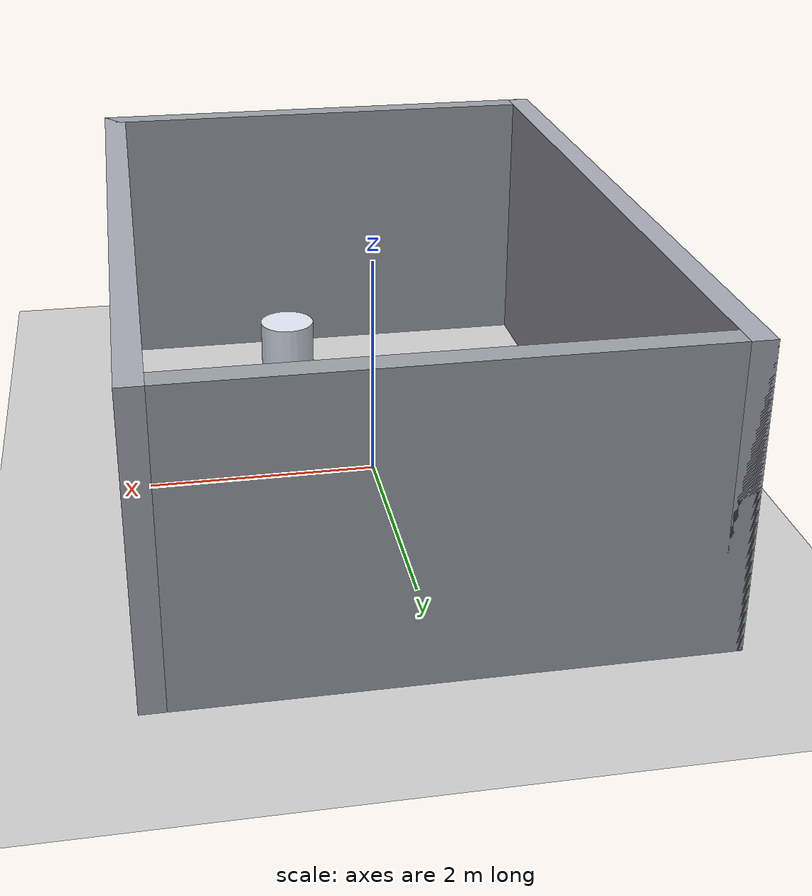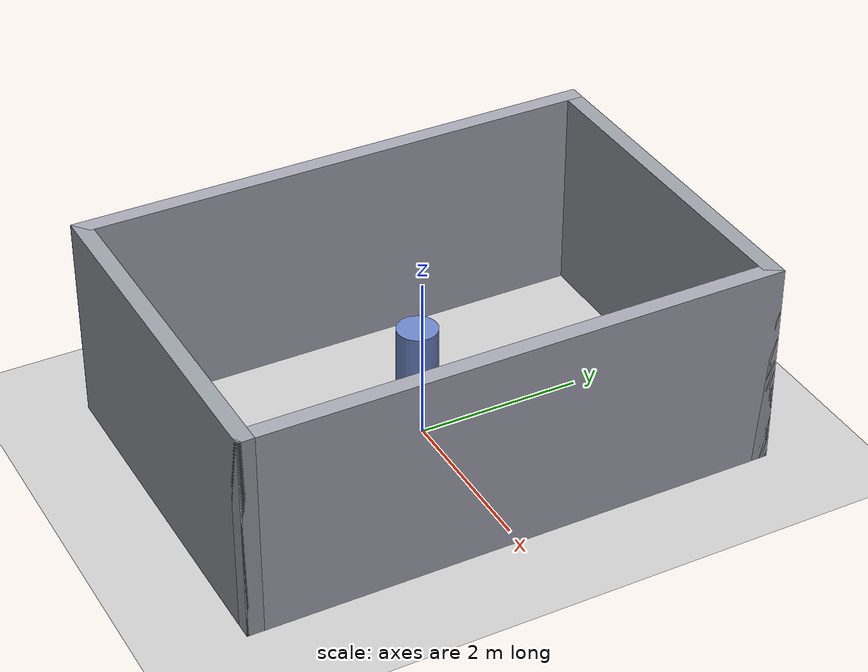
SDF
<?xml version="1.0" ?>
<sdf version="1.6">
  <world name="warehouse_semantic">

    <plugin filename="gz-sim-physics-system"
            name="gz::sim::systems::Physics"/>
    <plugin filename="gz-sim-user-commands-system"
            name="gz::sim::systems::UserCommands"/>
    <plugin filename="gz-sim-scene-broadcaster-system"
            name="gz::sim::systems::SceneBroadcaster"/>
    <plugin filename="gz-sim-sensors-system"
            name="gz::sim::systems::Sensors">
      <render_engine>ogre2</render_engine>
    </plugin>
    <plugin filename="gz-sim-imu-system"
            name="gz::sim::systems::Imu"/>

    <!-- Standard lighting -->
    <light name="sun" type="directional">
      <cast_shadows>false</cast_shadows>
      <pose>0 0 10 0 0 0</pose>
      <diffuse>0.8 0.8 0.8 1</diffuse>
      <specular>0.2 0.2 0.2 1</specular>
      <attenuation>
        <range>1000</range>
        <constant>0.9</constant>
        <linear>0.01</linear>
        <quadratic>0.001</quadratic>
      </attenuation>
      <direction>-0.5 0.1 -0.9</direction>
    </light>

    <!-- Infinite ground (collision + visual); warehouse walls provide boundaries -->
    <model name="ground_plane">
      <static>true</static>
      <link name="link">
        <collision name="collision">
          <geometry>
            <plane>
              <normal>0 0 1</normal>
              <size>100 100</size>
            </plane>
          </geometry>
        </collision>
        <visual name="visual">
          <geometry>
            <plane>
              <normal>0 0 1</normal>
              <size>100 100</size>
            </plane>
          </geometry>
          <material>
            <ambient>0.8 0.8 0.8 1</ambient>
            <diffuse>0.8 0.8 0.8 1</diffuse>
            <specular>0.8 0.8 0.8 1</specular>
          </material>
        </visual>
      </link>
    </model>

    <physics name="default_physics" type="dart">
      <max_step_size>0.001</max_step_size>
      <real_time_factor>1.0</real_time_factor>
    </physics>

    <!-- Scene ambient (subtle, works with sun) -->
    <scene>
      <ambient>0.4 0.4 0.4 1</ambient>
      <background>0.7 0.75 0.8 1</background>
    </scene>

    <!--
      Walls: static boxes, thickness 0.2 m, height 2.5 m (good for lidar / collision).
      Inner clearance: X in [-2, 2], Y in [-3, 3] (4 m × 6 m).
    -->
    <model name="wall_east">
      <static>true</static>
      <pose>2.1 0 1.25 0 0 0</pose>
      <link name="link">
        <collision name="collision">
          <geometry>
            <box>
              <size>0.2 6.4 2.5</size>
            </box>
          </geometry>
        </collision>
        <visual name="visual">
          <geometry>
            <box>
              <size>0.2 6.4 2.5</size>
            </box>
          </geometry>
          <material>
            <ambient>0.55 0.55 0.58 1</ambient>
            <diffuse>0.65 0.65 0.7 1</diffuse>
          </material>
        </visual>
      </link>
    </model>

    <model name="wall_west">
      <static>true</static>
      <pose>-2.1 0 1.25 0 0 0</pose>
      <link name="link">
        <collision name="collision">
          <geometry>
            <box>
              <size>0.2 6.4 2.5</size>
            </box>
          </geometry>
        </collision>
        <visual name="visual">
          <geometry>
            <box>
              <size>0.2 6.4 2.5</size>
            </box>
          </geometry>
          <material>
            <ambient>0.55 0.55 0.58 1</ambient>
            <diffuse>0.65 0.65 0.7 1</diffuse>
          </material>
        </visual>
      </link>
    </model>

    <model name="wall_north">
      <static>true</static>
      <pose>0 3.1 1.25 0 0 0</pose>
      <link name="link">
        <collision name="collision">
          <geometry>
            <box>
              <size>4.4 0.2 2.5</size>
            </box>
          </geometry>
        </collision>
        <visual name="visual">
          <geometry>
            <box>
              <size>4.4 0.2 2.5</size>
            </box>
          </geometry>
          <material>
            <ambient>0.5 0.52 0.55 1</ambient>
            <diffuse>0.6 0.62 0.65 1</diffuse>
          </material>
        </visual>
      </link>
    </model>

    <model name="wall_south">
      <static>true</static>
      <pose>0 -3.1 1.25 0 0 0</pose>
      <link name="link">
        <collision name="collision">
          <geometry>
            <box>
              <size>4.4 0.2 2.5</size>
            </box>
          </geometry>
        </collision>
        <visual name="visual">
          <geometry>
            <box>
              <size>4.4 0.2 2.5</size>
            </box>
          </geometry>
          <material>
            <ambient>0.5 0.52 0.55 1</ambient>
            <diffuse>0.6 0.62 0.65 1</diffuse>
          </material>
        </visual>
      </link>
    </model>

    <!-- Semantic props: cylinders at YAML approach poses (r=0.25 m) for LiDAR returns. z=center height. -->
    <model name="table">
      <static>true</static>
      <pose>0.7 1.5 0.45 0 0 0</pose>
      <link name="link">
        <collision name="collision">
          <geometry>
            <cylinder>
              <radius>0.25</radius>
              <length>0.9</length>
            </cylinder>
          </geometry>
        </collision>
        <visual name="visual">
          <geometry>
            <cylinder>
              <radius>0.25</radius>
              <length>0.9</length>
            </cylinder>
          </geometry>
          <material>
            <ambient>0.55 0.4 0.28 1</ambient>
            <diffuse>0.65 0.48 0.32 1</diffuse>
          </material>
        </visual>
      </link>
    </model>

    <model name="chair">
      <static>true</static>
      <pose>-0.7 0.3 0.45 0 0 0</pose>
      <link name="link">
        <collision name="collision">
          <geometry>
            <cylinder>
              <radius>0.25</radius>
              <length>0.9</length>
            </cylinder>
          </geometry>
        </collision>
        <visual name="visual">
          <geometry>
            <cylinder>
              <radius>0.25</radius>
              <length>0.9</length>
            </cylinder>
          </geometry>
          <material>
            <ambient>0.35 0.45 0.65 1</ambient>
            <diffuse>0.42 0.52 0.78 1</diffuse>
          </material>
        </visual>
      </link>
    </model>

    <model name="fridge">
      <static>true</static>
      <pose>0.6 -1.4 0.45 0 0 0</pose>
      <link name="link">
        <collision name="collision">
          <geometry>
            <cylinder>
              <radius>0.25</radius>
              <length>0.9</length>
            </cylinder>
          </geometry>
        </collision>
        <visual name="visual">
          <geometry>
            <cylinder>
              <radius>0.25</radius>
              <length>0.9</length>
            </cylinder>
          </geometry>
          <material>
            <ambient>0.75 0.76 0.8 1</ambient>
            <diffuse>0.88 0.9 0.95 1</diffuse>
          </material>
        </visual>
      </link>
    </model>

  </world>
</sdf>
